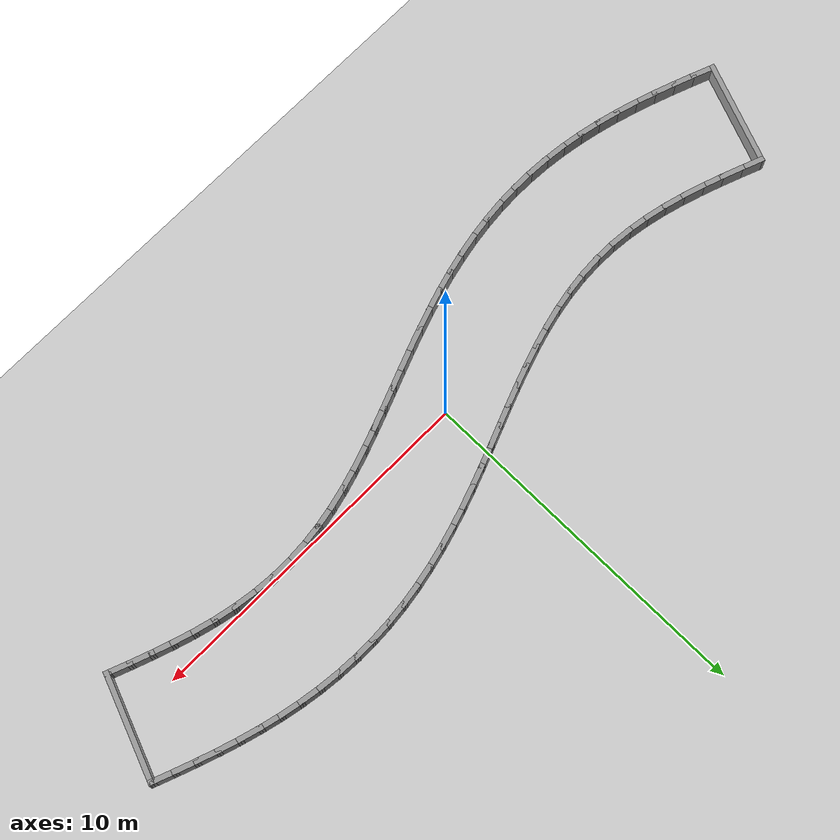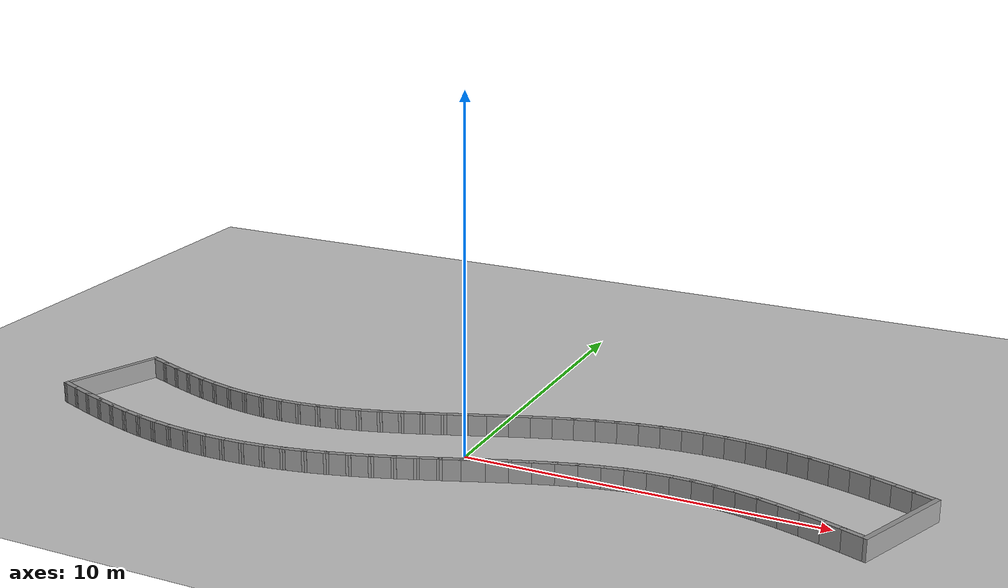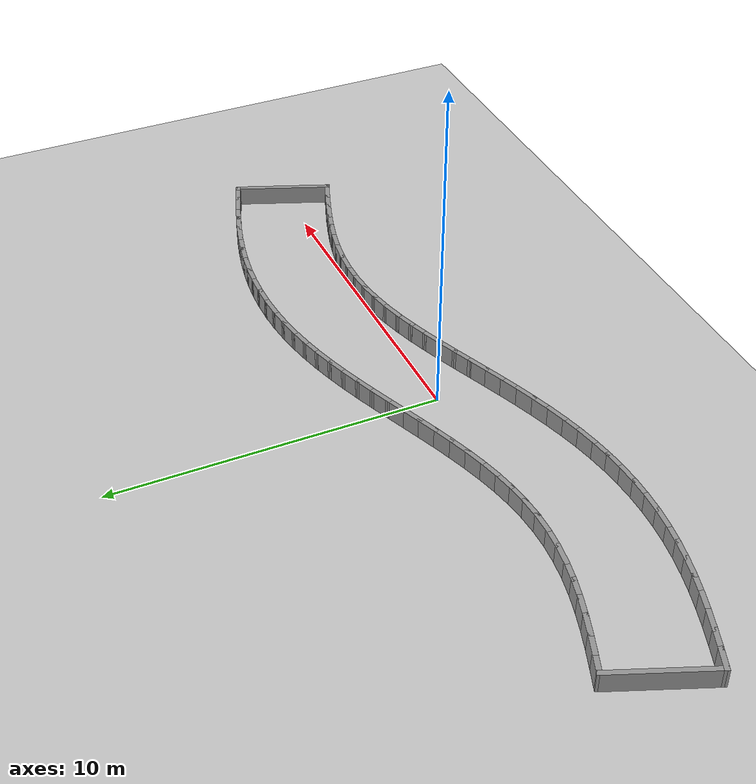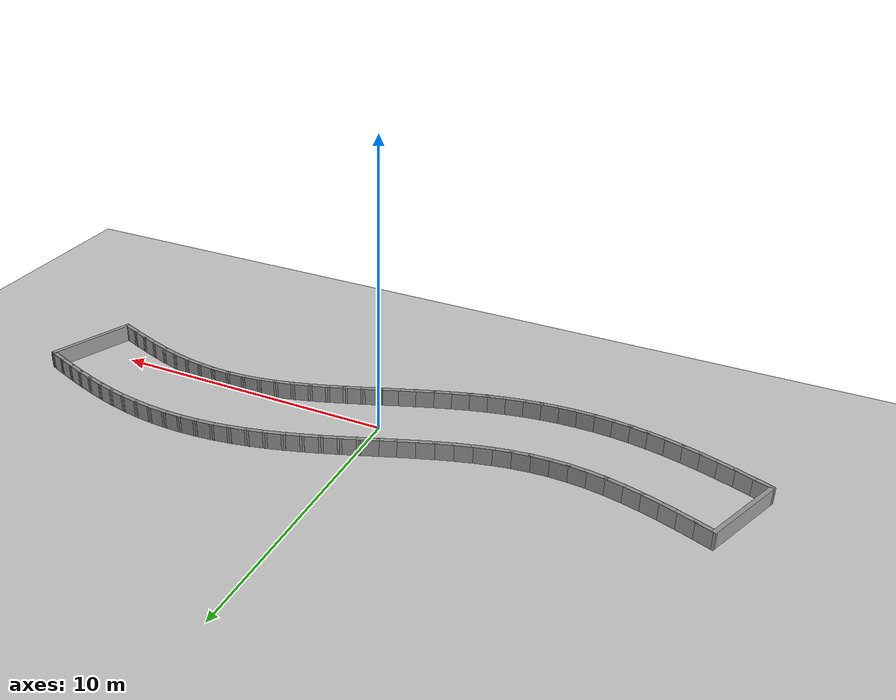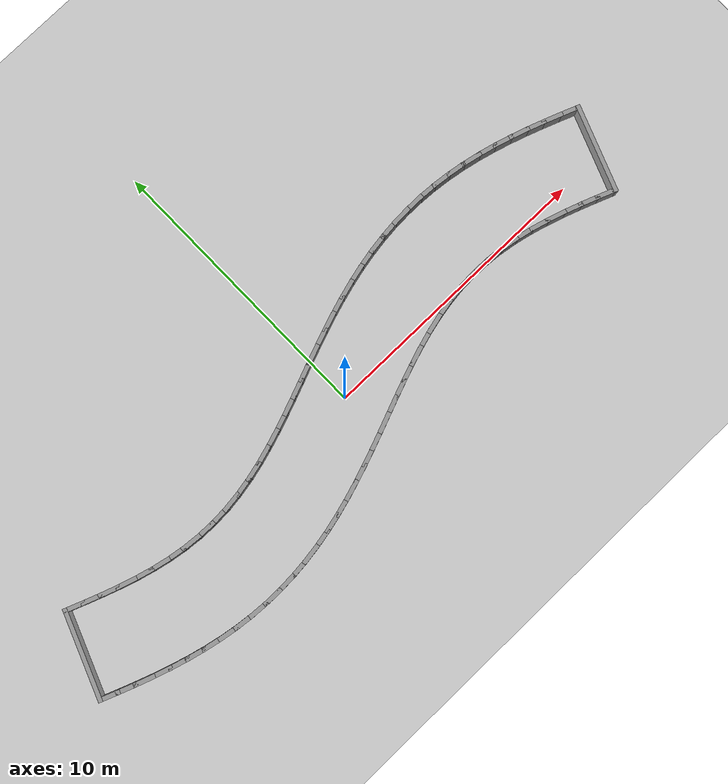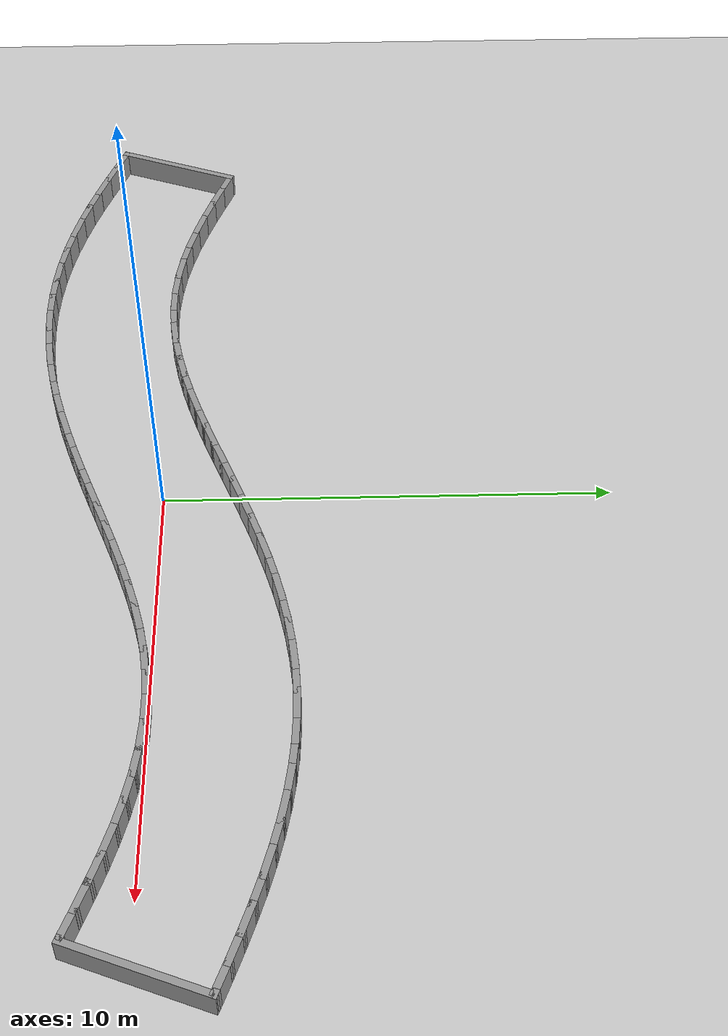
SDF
<?xml version="1.0" ?>
<sdf version='1.7'>
  <world name='default'>
    <plugin name='gazebo_ros_state' filename='libgazebo_ros_state.so'>
      <ros>
        <namespace>/</namespace>
      </ros>
      <update_rate>1000.0</update_rate>
    </plugin>

    <light name='sun' type='directional'>
      <cast_shadows>1</cast_shadows>
      <pose>0 0 10 0 -0 0</pose>
      <diffuse>0.8 0.8 0.8 1</diffuse>
      <specular>0.2 0.2 0.2 1</specular>
      <attenuation>
        <range>1000</range>
        <constant>0.9</constant>
        <linear>0.01</linear>
        <quadratic>0.001</quadratic>
      </attenuation>
      <direction>-0.5 0.1 -0.9</direction>
      <spot>
        <inner_angle>0</inner_angle>
        <outer_angle>0</outer_angle>
        <falloff>0</falloff>
      </spot>
    </light>
    <model name='ground_plane'>
      <static>1</static>
      <link name='link'>
        <collision name='collision'>
          <geometry>
            <plane>
              <normal>0 0 1</normal>
              <size>100 100</size>
            </plane>
          </geometry>
          <surface>
            <friction>
              <ode>
                <mu>100</mu>
                <mu2>50</mu2>
              </ode>
              <torsional>
                <ode/>
              </torsional>
            </friction>
            <contact>
              <ode/>
            </contact>
            <bounce/>
          </surface>
          <max_contacts>10</max_contacts>
        </collision>
        <visual name='visual'>
          <cast_shadows>0</cast_shadows>
          <geometry>
            <plane>
              <normal>0 0 1</normal>
              <size>100 100</size>
            </plane>
          </geometry>
          <material>
            <script>
              <uri>file://media/materials/scripts/gazebo.material</uri>
              <name>Gazebo/Grey</name>
            </script>
          </material>
        </visual>
        <self_collide>0</self_collide>
        <enable_wind>0</enable_wind>
        <kinematic>0</kinematic>
      </link>
    </model>
    <gravity>0 0 -9.8</gravity>
    <magnetic_field>6e-06 2.3e-05 -4.2e-05</magnetic_field>
    <atmosphere type='adiabatic'/>
    <physics type='ode'>
      <max_step_size>0.001</max_step_size>
      <real_time_factor>1</real_time_factor>
      <real_time_update_rate>1000</real_time_update_rate>
    </physics>
    <scene>
      <ambient>0.4 0.4 0.4 1</ambient>
      <background>0.7 0.7 0.7 1</background>
      <shadows>1</shadows>
    </scene>
    <audio>
      <device>default</device>
    </audio>
    <wind/>
    <spherical_coordinates>
      <surface_model>EARTH_WGS84</surface_model>
      <latitude_deg>0</latitude_deg>
      <longitude_deg>0</longitude_deg>
      <elevation>0</elevation>
      <heading_deg>0</heading_deg>
    </spherical_coordinates>
  <model name='gentle_chicane'>
    <pose>0 0 0 0 -0 0</pose>
    <link name='Wall_0'>
      <collision name='Wall_0_Collision'>
        <geometry><box><size>0.7500 0.1500 0.6000</size></box></geometry>
        <pose>0 0 0.3000 0 -0 0</pose>
      </collision>
      <visual name='Wall_0_Visual'>
        <pose>0 0 0.3000 0 -0 0</pose>
        <geometry><box><size>0.7500 0.1500 0.6000</size></box></geometry>
        <material>
          <script>
            <uri>file://media/materials/scripts/gazebo.material</uri>
            <name>Gazebo/Grey</name>
          </script>
          <ambient>1 1 1 1</ambient>
        </material>
      </visual>
      <pose>-10.7748 1.1325 0 0 -0 -0.36840</pose>
    </link>
    <link name='Wall_1'>
      <collision name='Wall_1_Collision'>
        <geometry><box><size>0.7500 0.1500 0.6000</size></box></geometry>
        <pose>0 0 0.3000 0 -0 0</pose>
      </collision>
      <visual name='Wall_1_Visual'>
        <pose>0 0 0.3000 0 -0 0</pose>
        <geometry><box><size>0.7500 0.1500 0.6000</size></box></geometry>
        <material>
          <script>
            <uri>file://media/materials/scripts/gazebo.material</uri>
            <name>Gazebo/Grey</name>
          </script>
          <ambient>1 1 1 1</ambient>
        </material>
      </visual>
      <pose>-10.2137 0.9201 0 0 -0 -0.35527</pose>
    </link>
    <link name='Wall_2'>
      <collision name='Wall_2_Collision'>
        <geometry><box><size>0.7500 0.1500 0.6000</size></box></geometry>
        <pose>0 0 0.3000 0 -0 0</pose>
      </collision>
      <visual name='Wall_2_Visual'>
        <pose>0 0 0.3000 0 -0 0</pose>
        <geometry><box><size>0.7500 0.1500 0.6000</size></box></geometry>
        <material>
          <script>
            <uri>file://media/materials/scripts/gazebo.material</uri>
            <name>Gazebo/Grey</name>
          </script>
          <ambient>1 1 1 1</ambient>
        </material>
      </visual>
      <pose>-9.6490 0.7175 0 0 -0 -0.33373</pose>
    </link>
    <link name='Wall_3'>
      <collision name='Wall_3_Collision'>
        <geometry><box><size>0.7500 0.1500 0.6000</size></box></geometry>
        <pose>0 0 0.3000 0 -0 0</pose>
      </collision>
      <visual name='Wall_3_Visual'>
        <pose>0 0 0.3000 0 -0 0</pose>
        <geometry><box><size>0.7500 0.1500 0.6000</size></box></geometry>
        <material>
          <script>
            <uri>file://media/materials/scripts/gazebo.material</uri>
            <name>Gazebo/Grey</name>
          </script>
          <ambient>1 1 1 1</ambient>
        </material>
      </visual>
      <pose>-9.0792 0.5297 0 0 -0 -0.30323</pose>
    </link>
    <link name='Wall_4'>
      <collision name='Wall_4_Collision'>
        <geometry><box><size>0.7499 0.1500 0.6000</size></box></geometry>
        <pose>0 0 0.3000 0 -0 0</pose>
      </collision>
      <visual name='Wall_4_Visual'>
        <pose>0 0 0.3000 0 -0 0</pose>
        <geometry><box><size>0.7499 0.1500 0.6000</size></box></geometry>
        <material>
          <script>
            <uri>file://media/materials/scripts/gazebo.material</uri>
            <name>Gazebo/Grey</name>
          </script>
          <ambient>1 1 1 1</ambient>
        </material>
      </visual>
      <pose>-8.5033 0.3620 0 0 -0 -0.26325</pose>
    </link>
    <link name='Wall_5'>
      <collision name='Wall_5_Collision'>
        <geometry><box><size>0.7499 0.1500 0.6000</size></box></geometry>
        <pose>0 0 0.3000 0 -0 0</pose>
      </collision>
      <visual name='Wall_5_Visual'>
        <pose>0 0 0.3000 0 -0 0</pose>
        <geometry><box><size>0.7499 0.1500 0.6000</size></box></geometry>
        <material>
          <script>
            <uri>file://media/materials/scripts/gazebo.material</uri>
            <name>Gazebo/Grey</name>
          </script>
          <ambient>1 1 1 1</ambient>
        </material>
      </visual>
      <pose>-7.9205 0.2204 0 0 -0 -0.21361</pose>
    </link>
    <link name='Wall_6'>
      <collision name='Wall_6_Collision'>
        <geometry><box><size>0.7499 0.1500 0.6000</size></box></geometry>
        <pose>0 0 0.3000 0 -0 0</pose>
      </collision>
      <visual name='Wall_6_Visual'>
        <pose>0 0 0.3000 0 -0 0</pose>
        <geometry><box><size>0.7499 0.1500 0.6000</size></box></geometry>
        <material>
          <script>
            <uri>file://media/materials/scripts/gazebo.material</uri>
            <name>Gazebo/Grey</name>
          </script>
          <ambient>1 1 1 1</ambient>
        </material>
      </visual>
      <pose>-7.3310 0.1106 0 0 -0 -0.15466</pose>
    </link>
    <link name='Wall_7'>
      <collision name='Wall_7_Collision'>
        <geometry><box><size>0.7499 0.1500 0.6000</size></box></geometry>
        <pose>0 0 0.3000 0 -0 0</pose>
      </collision>
      <visual name='Wall_7_Visual'>
        <pose>0 0 0.3000 0 -0 0</pose>
        <geometry><box><size>0.7499 0.1500 0.6000</size></box></geometry>
        <material>
          <script>
            <uri>file://media/materials/scripts/gazebo.material</uri>
            <name>Gazebo/Grey</name>
          </script>
          <ambient>1 1 1 1</ambient>
        </material>
      </visual>
      <pose>-6.7358 0.0380 0 0 -0 -0.08809</pose>
    </link>
    <link name='Wall_8'>
      <collision name='Wall_8_Collision'>
        <geometry><box><size>0.7499 0.1500 0.6000</size></box></geometry>
        <pose>0 0 0.3000 0 -0 0</pose>
      </collision>
      <visual name='Wall_8_Visual'>
        <pose>0 0 0.3000 0 -0 0</pose>
        <geometry><box><size>0.7499 0.1500 0.6000</size></box></geometry>
        <material>
          <script>
            <uri>file://media/materials/scripts/gazebo.material</uri>
            <name>Gazebo/Grey</name>
          </script>
          <ambient>1 1 1 1</ambient>
        </material>
      </visual>
      <pose>-6.1372 0.0066 0 0 -0 -0.01665</pose>
    </link>
    <link name='Wall_9'>
      <collision name='Wall_9_Collision'>
        <geometry><box><size>0.7499 0.1500 0.6000</size></box></geometry>
        <pose>0 0 0.3000 0 -0 0</pose>
      </collision>
      <visual name='Wall_9_Visual'>
        <pose>0 0 0.3000 0 -0 0</pose>
        <geometry><box><size>0.7499 0.1500 0.6000</size></box></geometry>
        <material>
          <script>
            <uri>file://media/materials/scripts/gazebo.material</uri>
            <name>Gazebo/Grey</name>
          </script>
          <ambient>1 1 1 1</ambient>
        </material>
      </visual>
      <pose>-5.5378 0.0183 0 0 -0 0.05576</pose>
    </link>
    <link name='Wall_10'>
      <collision name='Wall_10_Collision'>
        <geometry><box><size>0.7499 0.1500 0.6000</size></box></geometry>
        <pose>0 0 0.3000 0 -0 0</pose>
      </collision>
      <visual name='Wall_10_Visual'>
        <pose>0 0 0.3000 0 -0 0</pose>
        <geometry><box><size>0.7499 0.1500 0.6000</size></box></geometry>
        <material>
          <script>
            <uri>file://media/materials/scripts/gazebo.material</uri>
            <name>Gazebo/Grey</name>
          </script>
          <ambient>1 1 1 1</ambient>
        </material>
      </visual>
      <pose>-4.9407 0.0725 0 0 -0 0.12505</pose>
    </link>
    <link name='Wall_11'>
      <collision name='Wall_11_Collision'>
        <geometry><box><size>0.7499 0.1500 0.6000</size></box></geometry>
        <pose>0 0 0.3000 0 -0 0</pose>
      </collision>
      <visual name='Wall_11_Visual'>
        <pose>0 0 0.3000 0 -0 0</pose>
        <geometry><box><size>0.7499 0.1500 0.6000</size></box></geometry>
        <material>
          <script>
            <uri>file://media/materials/scripts/gazebo.material</uri>
            <name>Gazebo/Grey</name>
          </script>
          <ambient>1 1 1 1</ambient>
        </material>
      </visual>
      <pose>-4.3484 0.1659 0 0 -0 0.18774</pose>
    </link>
    <link name='Wall_12'>
      <collision name='Wall_12_Collision'>
        <geometry><box><size>0.7499 0.1500 0.6000</size></box></geometry>
        <pose>0 0 0.3000 0 -0 0</pose>
      </collision>
      <visual name='Wall_12_Visual'>
        <pose>0 0 0.3000 0 -0 0</pose>
        <geometry><box><size>0.7499 0.1500 0.6000</size></box></geometry>
        <material>
          <script>
            <uri>file://media/materials/scripts/gazebo.material</uri>
            <name>Gazebo/Grey</name>
          </script>
          <ambient>1 1 1 1</ambient>
        </material>
      </visual>
      <pose>-3.7625 0.2937 0 0 -0 0.24173</pose>
    </link>
    <link name='Wall_13'>
      <collision name='Wall_13_Collision'>
        <geometry><box><size>0.7500 0.1500 0.6000</size></box></geometry>
        <pose>0 0 0.3000 0 -0 0</pose>
      </collision>
      <visual name='Wall_13_Visual'>
        <pose>0 0 0.3000 0 -0 0</pose>
        <geometry><box><size>0.7500 0.1500 0.6000</size></box></geometry>
        <material>
          <script>
            <uri>file://media/materials/scripts/gazebo.material</uri>
            <name>Gazebo/Grey</name>
          </script>
          <ambient>1 1 1 1</ambient>
        </material>
      </visual>
      <pose>-3.1835 0.4501 0 0 -0 0.28612</pose>
    </link>
    <link name='Wall_14'>
      <collision name='Wall_14_Collision'>
        <geometry><box><size>0.7500 0.1500 0.6000</size></box></geometry>
        <pose>0 0 0.3000 0 -0 0</pose>
      </collision>
      <visual name='Wall_14_Visual'>
        <pose>0 0 0.3000 0 -0 0</pose>
        <geometry><box><size>0.7500 0.1500 0.6000</size></box></geometry>
        <material>
          <script>
            <uri>file://media/materials/scripts/gazebo.material</uri>
            <name>Gazebo/Grey</name>
          </script>
          <ambient>1 1 1 1</ambient>
        </material>
      </visual>
      <pose>-2.6110 0.6294 0 0 -0 0.32094</pose>
    </link>
    <link name='Wall_15'>
      <collision name='Wall_15_Collision'>
        <geometry><box><size>0.7500 0.1500 0.6000</size></box></geometry>
        <pose>0 0 0.3000 0 -0 0</pose>
      </collision>
      <visual name='Wall_15_Visual'>
        <pose>0 0 0.3000 0 -0 0</pose>
        <geometry><box><size>0.7500 0.1500 0.6000</size></box></geometry>
        <material>
          <script>
            <uri>file://media/materials/scripts/gazebo.material</uri>
            <name>Gazebo/Grey</name>
          </script>
          <ambient>1 1 1 1</ambient>
        </material>
      </visual>
      <pose>-2.0442 0.8259 0 0 -0 0.34648</pose>
    </link>
    <link name='Wall_16'>
      <collision name='Wall_16_Collision'>
        <geometry><box><size>0.7500 0.1500 0.6000</size></box></geometry>
        <pose>0 0 0.3000 0 -0 0</pose>
      </collision>
      <visual name='Wall_16_Visual'>
        <pose>0 0 0.3000 0 -0 0</pose>
        <geometry><box><size>0.7500 0.1500 0.6000</size></box></geometry>
        <material>
          <script>
            <uri>file://media/materials/scripts/gazebo.material</uri>
            <name>Gazebo/Grey</name>
          </script>
          <ambient>1 1 1 1</ambient>
        </material>
      </visual>
      <pose>-1.4816 1.0344 0 0 -0 0.36340</pose>
    </link>
    <link name='Wall_17'>
      <collision name='Wall_17_Collision'>
        <geometry><box><size>0.7500 0.1500 0.6000</size></box></geometry>
        <pose>0 0 0.3000 0 -0 0</pose>
      </collision>
      <visual name='Wall_17_Visual'>
        <pose>0 0 0.3000 0 -0 0</pose>
        <geometry><box><size>0.7500 0.1500 0.6000</size></box></geometry>
        <material>
          <script>
            <uri>file://media/materials/scripts/gazebo.material</uri>
            <name>Gazebo/Grey</name>
          </script>
          <ambient>1 1 1 1</ambient>
        </material>
      </visual>
      <pose>-0.9217 1.2502 0 0 -0 0.37223</pose>
    </link>
    <link name='Wall_18'>
      <collision name='Wall_18_Collision'>
        <geometry><box><size>0.7500 0.1500 0.6000</size></box></geometry>
        <pose>0 0 0.3000 0 -0 0</pose>
      </collision>
      <visual name='Wall_18_Visual'>
        <pose>0 0 0.3000 0 -0 0</pose>
        <geometry><box><size>0.7500 0.1500 0.6000</size></box></geometry>
        <material>
          <script>
            <uri>file://media/materials/scripts/gazebo.material</uri>
            <name>Gazebo/Grey</name>
          </script>
          <ambient>1 1 1 1</ambient>
        </material>
      </visual>
      <pose>-0.3630 1.4688 0 0 -0 0.37350</pose>
    </link>
    <link name='Wall_19'>
      <collision name='Wall_19_Collision'>
        <geometry><box><size>0.7500 0.1500 0.6000</size></box></geometry>
        <pose>0 0 0.3000 0 -0 0</pose>
      </collision>
      <visual name='Wall_19_Visual'>
        <pose>0 0 0.3000 0 -0 0</pose>
        <geometry><box><size>0.7500 0.1500 0.6000</size></box></geometry>
        <material>
          <script>
            <uri>file://media/materials/scripts/gazebo.material</uri>
            <name>Gazebo/Grey</name>
          </script>
          <ambient>1 1 1 1</ambient>
        </material>
      </visual>
      <pose>0.1963 1.6860 0 0 -0 0.36761</pose>
    </link>
    <link name='Wall_20'>
      <collision name='Wall_20_Collision'>
        <geometry><box><size>0.7500 0.1500 0.6000</size></box></geometry>
        <pose>0 0 0.3000 0 -0 0</pose>
      </collision>
      <visual name='Wall_20_Visual'>
        <pose>0 0 0.3000 0 -0 0</pose>
        <geometry><box><size>0.7500 0.1500 0.6000</size></box></geometry>
        <material>
          <script>
            <uri>file://media/materials/scripts/gazebo.material</uri>
            <name>Gazebo/Grey</name>
          </script>
          <ambient>1 1 1 1</ambient>
        </material>
      </visual>
      <pose>0.7576 1.8981 0 0 -0 0.35490</pose>
    </link>
    <link name='Wall_21'>
      <collision name='Wall_21_Collision'>
        <geometry><box><size>0.7500 0.1500 0.6000</size></box></geometry>
        <pose>0 0 0.3000 0 -0 0</pose>
      </collision>
      <visual name='Wall_21_Visual'>
        <pose>0 0 0.3000 0 -0 0</pose>
        <geometry><box><size>0.7500 0.1500 0.6000</size></box></geometry>
        <material>
          <script>
            <uri>file://media/materials/scripts/gazebo.material</uri>
            <name>Gazebo/Grey</name>
          </script>
          <ambient>1 1 1 1</ambient>
        </material>
      </visual>
      <pose>1.3221 2.1011 0 0 -0 0.33563</pose>
    </link>
    <link name='Wall_22'>
      <collision name='Wall_22_Collision'>
        <geometry><box><size>0.7500 0.1500 0.6000</size></box></geometry>
        <pose>0 0 0.3000 0 -0 0</pose>
      </collision>
      <visual name='Wall_22_Visual'>
        <pose>0 0 0.3000 0 -0 0</pose>
        <geometry><box><size>0.7500 0.1500 0.6000</size></box></geometry>
        <material>
          <script>
            <uri>file://media/materials/scripts/gazebo.material</uri>
            <name>Gazebo/Grey</name>
          </script>
          <ambient>1 1 1 1</ambient>
        </material>
      </visual>
      <pose>1.8910 2.2915 0 0 -0 0.31016</pose>
    </link>
    <link name='Wall_23'>
      <collision name='Wall_23_Collision'>
        <geometry><box><size>0.7500 0.1500 0.6000</size></box></geometry>
        <pose>0 0 0.3000 0 -0 0</pose>
      </collision>
      <visual name='Wall_23_Visual'>
        <pose>0 0 0.3000 0 -0 0</pose>
        <geometry><box><size>0.7500 0.1500 0.6000</size></box></geometry>
        <material>
          <script>
            <uri>file://media/materials/scripts/gazebo.material</uri>
            <name>Gazebo/Grey</name>
          </script>
          <ambient>1 1 1 1</ambient>
        </material>
      </visual>
      <pose>2.4651 2.4656 0 0 -0 0.27875</pose>
    </link>
    <link name='Wall_24'>
      <collision name='Wall_24_Collision'>
        <geometry><box><size>0.7500 0.1500 0.6000</size></box></geometry>
        <pose>0 0 0.3000 0 -0 0</pose>
      </collision>
      <visual name='Wall_24_Visual'>
        <pose>0 0 0.3000 0 -0 0</pose>
        <geometry><box><size>0.7500 0.1500 0.6000</size></box></geometry>
        <material>
          <script>
            <uri>file://media/materials/scripts/gazebo.material</uri>
            <name>Gazebo/Grey</name>
          </script>
          <ambient>1 1 1 1</ambient>
        </material>
      </visual>
      <pose>3.0448 2.6200 0 0 -0 0.24179</pose>
    </link>
    <link name='Wall_25'>
      <collision name='Wall_25_Collision'>
        <geometry><box><size>0.7500 0.1500 0.6000</size></box></geometry>
        <pose>0 0 0.3000 0 -0 0</pose>
      </collision>
      <visual name='Wall_25_Visual'>
        <pose>0 0 0.3000 0 -0 0</pose>
        <geometry><box><size>0.7500 0.1500 0.6000</size></box></geometry>
        <material>
          <script>
            <uri>file://media/materials/scripts/gazebo.material</uri>
            <name>Gazebo/Grey</name>
          </script>
          <ambient>1 1 1 1</ambient>
        </material>
      </visual>
      <pose>3.6300 2.7514 0 0 -0 0.19988</pose>
    </link>
    <link name='Wall_26'>
      <collision name='Wall_26_Collision'>
        <geometry><box><size>0.7499 0.1500 0.6000</size></box></geometry>
        <pose>0 0 0.3000 0 -0 0</pose>
      </collision>
      <visual name='Wall_26_Visual'>
        <pose>0 0 0.3000 0 -0 0</pose>
        <geometry><box><size>0.7499 0.1500 0.6000</size></box></geometry>
        <material>
          <script>
            <uri>file://media/materials/scripts/gazebo.material</uri>
            <name>Gazebo/Grey</name>
          </script>
          <ambient>1 1 1 1</ambient>
        </material>
      </visual>
      <pose>4.2205 2.8569 0 0 -0 0.15367</pose>
    </link>
    <link name='Wall_27'>
      <collision name='Wall_27_Collision'>
        <geometry><box><size>0.7499 0.1500 0.6000</size></box></geometry>
        <pose>0 0 0.3000 0 -0 0</pose>
      </collision>
      <visual name='Wall_27_Visual'>
        <pose>0 0 0.3000 0 -0 0</pose>
        <geometry><box><size>0.7499 0.1500 0.6000</size></box></geometry>
        <material>
          <script>
            <uri>file://media/materials/scripts/gazebo.material</uri>
            <name>Gazebo/Grey</name>
          </script>
          <ambient>1 1 1 1</ambient>
        </material>
      </visual>
      <pose>4.8153 2.9339 0 0 -0 0.10404</pose>
    </link>
    <link name='Wall_28'>
      <collision name='Wall_28_Collision'>
        <geometry><box><size>0.7499 0.1500 0.6000</size></box></geometry>
        <pose>0 0 0.3000 0 -0 0</pose>
      </collision>
      <visual name='Wall_28_Visual'>
        <pose>0 0 0.3000 0 -0 0</pose>
        <geometry><box><size>0.7499 0.1500 0.6000</size></box></geometry>
        <material>
          <script>
            <uri>file://media/materials/scripts/gazebo.material</uri>
            <name>Gazebo/Grey</name>
          </script>
          <ambient>1 1 1 1</ambient>
        </material>
      </visual>
      <pose>5.4132 2.9807 0 0 -0 0.05212</pose>
    </link>
    <link name='Wall_29'>
      <collision name='Wall_29_Collision'>
        <geometry><box><size>0.7499 0.1500 0.6000</size></box></geometry>
        <pose>0 0 0.3000 0 -0 0</pose>
      </collision>
      <visual name='Wall_29_Visual'>
        <pose>0 0 0.3000 0 -0 0</pose>
        <geometry><box><size>0.7499 0.1500 0.6000</size></box></geometry>
        <material>
          <script>
            <uri>file://media/materials/scripts/gazebo.material</uri>
            <name>Gazebo/Grey</name>
          </script>
          <ambient>1 1 1 1</ambient>
        </material>
      </visual>
      <pose>6.0127 2.9960 0 0 -0 -0.00118</pose>
    </link>
    <link name='Wall_30'>
      <collision name='Wall_30_Collision'>
        <geometry><box><size>0.7499 0.1500 0.6000</size></box></geometry>
        <pose>0 0 0.3000 0 -0 0</pose>
      </collision>
      <visual name='Wall_30_Visual'>
        <pose>0 0 0.3000 0 -0 0</pose>
        <geometry><box><size>0.7499 0.1500 0.6000</size></box></geometry>
        <material>
          <script>
            <uri>file://media/materials/scripts/gazebo.material</uri>
            <name>Gazebo/Grey</name>
          </script>
          <ambient>1 1 1 1</ambient>
        </material>
      </visual>
      <pose>6.6122 2.9793 0 0 -0 -0.05427</pose>
    </link>
    <link name='Wall_31'>
      <collision name='Wall_31_Collision'>
        <geometry><box><size>0.7499 0.1500 0.6000</size></box></geometry>
        <pose>0 0 0.3000 0 -0 0</pose>
      </collision>
      <visual name='Wall_31_Visual'>
        <pose>0 0 0.3000 0 -0 0</pose>
        <geometry><box><size>0.7499 0.1500 0.6000</size></box></geometry>
        <material>
          <script>
            <uri>file://media/materials/scripts/gazebo.material</uri>
            <name>Gazebo/Grey</name>
          </script>
          <ambient>1 1 1 1</ambient>
        </material>
      </visual>
      <pose>7.2100 2.9313 0 0 -0 -0.10622</pose>
    </link>
    <link name='Wall_32'>
      <collision name='Wall_32_Collision'>
        <geometry><box><size>0.7499 0.1500 0.6000</size></box></geometry>
        <pose>0 0 0.3000 0 -0 0</pose>
      </collision>
      <visual name='Wall_32_Visual'>
        <pose>0 0 0.3000 0 -0 0</pose>
        <geometry><box><size>0.7499 0.1500 0.6000</size></box></geometry>
        <material>
          <script>
            <uri>file://media/materials/scripts/gazebo.material</uri>
            <name>Gazebo/Grey</name>
          </script>
          <ambient>1 1 1 1</ambient>
        </material>
      </visual>
      <pose>7.8046 2.8529 0 0 -0 -0.15571</pose>
    </link>
    <link name='Wall_33'>
      <collision name='Wall_33_Collision'>
        <geometry><box><size>0.7500 0.1500 0.6000</size></box></geometry>
        <pose>0 0 0.3000 0 -0 0</pose>
      </collision>
      <visual name='Wall_33_Visual'>
        <pose>0 0 0.3000 0 -0 0</pose>
        <geometry><box><size>0.7500 0.1500 0.6000</size></box></geometry>
        <material>
          <script>
            <uri>file://media/materials/scripts/gazebo.material</uri>
            <name>Gazebo/Grey</name>
          </script>
          <ambient>1 1 1 1</ambient>
        </material>
      </visual>
      <pose>8.3948 2.7463 0 0 -0 -0.20172</pose>
    </link>
    <link name='Wall_34'>
      <collision name='Wall_34_Collision'>
        <geometry><box><size>0.7500 0.1500 0.6000</size></box></geometry>
        <pose>0 0 0.3000 0 -0 0</pose>
      </collision>
      <visual name='Wall_34_Visual'>
        <pose>0 0 0.3000 0 -0 0</pose>
        <geometry><box><size>0.7500 0.1500 0.6000</size></box></geometry>
        <material>
          <script>
            <uri>file://media/materials/scripts/gazebo.material</uri>
            <name>Gazebo/Grey</name>
          </script>
          <ambient>1 1 1 1</ambient>
        </material>
      </visual>
      <pose>8.9799 2.6139 0 0 -0 -0.24349</pose>
    </link>
    <link name='Wall_35'>
      <collision name='Wall_35_Collision'>
        <geometry><box><size>0.7500 0.1500 0.6000</size></box></geometry>
        <pose>0 0 0.3000 0 -0 0</pose>
      </collision>
      <visual name='Wall_35_Visual'>
        <pose>0 0 0.3000 0 -0 0</pose>
        <geometry><box><size>0.7500 0.1500 0.6000</size></box></geometry>
        <material>
          <script>
            <uri>file://media/materials/scripts/gazebo.material</uri>
            <name>Gazebo/Grey</name>
          </script>
          <ambient>1 1 1 1</ambient>
        </material>
      </visual>
      <pose>9.5593 2.4586 0 0 -0 -0.28017</pose>
    </link>
    <link name='Wall_36'>
      <collision name='Wall_36_Collision'>
        <geometry><box><size>0.7500 0.1500 0.6000</size></box></geometry>
        <pose>0 0 0.3000 0 -0 0</pose>
      </collision>
      <visual name='Wall_36_Visual'>
        <pose>0 0 0.3000 0 -0 0</pose>
        <geometry><box><size>0.7500 0.1500 0.6000</size></box></geometry>
        <material>
          <script>
            <uri>file://media/materials/scripts/gazebo.material</uri>
            <name>Gazebo/Grey</name>
          </script>
          <ambient>1 1 1 1</ambient>
        </material>
      </visual>
      <pose>10.1331 2.2838 0 0 -0 -0.31136</pose>
    </link>
    <link name='Wall_37'>
      <collision name='Wall_37_Collision'>
        <geometry><box><size>0.7500 0.1500 0.6000</size></box></geometry>
        <pose>0 0 0.3000 0 -0 0</pose>
      </collision>
      <visual name='Wall_37_Visual'>
        <pose>0 0 0.3000 0 -0 0</pose>
        <geometry><box><size>0.7500 0.1500 0.6000</size></box></geometry>
        <material>
          <script>
            <uri>file://media/materials/scripts/gazebo.material</uri>
            <name>Gazebo/Grey</name>
          </script>
          <ambient>1 1 1 1</ambient>
        </material>
      </visual>
      <pose>10.7019 2.0928 0 0 -0 -0.33660</pose>
    </link>
    <link name='Wall_38'>
      <collision name='Wall_38_Collision'>
        <geometry><box><size>0.7500 0.1500 0.6000</size></box></geometry>
        <pose>0 0 0.3000 0 -0 0</pose>
      </collision>
      <visual name='Wall_38_Visual'>
        <pose>0 0 0.3000 0 -0 0</pose>
        <geometry><box><size>0.7500 0.1500 0.6000</size></box></geometry>
        <material>
          <script>
            <uri>file://media/materials/scripts/gazebo.material</uri>
            <name>Gazebo/Grey</name>
          </script>
          <ambient>1 1 1 1</ambient>
        </material>
      </visual>
      <pose>11.2662 1.8893 0 0 -0 -0.35556</pose>
    </link>
    <link name='Wall_39'>
      <collision name='Wall_39_Collision'>
        <geometry><box><size>0.7500 0.1500 0.6000</size></box></geometry>
        <pose>0 0 0.3000 0 -0 0</pose>
      </collision>
      <visual name='Wall_39_Visual'>
        <pose>0 0 0.3000 0 -0 0</pose>
        <geometry><box><size>0.7500 0.1500 0.6000</size></box></geometry>
        <material>
          <script>
            <uri>file://media/materials/scripts/gazebo.material</uri>
            <name>Gazebo/Grey</name>
          </script>
          <ambient>1 1 1 1</ambient>
        </material>
      </visual>
      <pose>11.8274 1.6769 0 0 -0 -0.36799</pose>
    </link>
    <link name='Wall_40'>
      <collision name='Wall_40_Collision'>
        <geometry><box><size>0.1908 0.1500 0.6000</size></box></geometry>
        <pose>0 0 0.3000 0 -0 0</pose>
      </collision>
      <visual name='Wall_40_Visual'>
        <pose>0 0 0.3000 0 -0 0</pose>
        <geometry><box><size>0.1908 0.1500 0.6000</size></box></geometry>
        <material>
          <script>
            <uri>file://media/materials/scripts/gazebo.material</uri>
            <name>Gazebo/Grey</name>
          </script>
          <ambient>1 1 1 1</ambient>
        </material>
      </visual>
      <pose>12.1263 1.5616 0 0 -0 -0.37209</pose>
    </link>
    <link name='Wall_41'>
      <collision name='Wall_41_Collision'>
        <geometry><box><size>0.7500 0.1500 0.6000</size></box></geometry>
        <pose>0 0 0.3000 0 -0 0</pose>
      </collision>
      <visual name='Wall_41_Visual'>
        <pose>0 0 0.3000 0 -0 0</pose>
        <geometry><box><size>0.7500 0.1500 0.6000</size></box></geometry>
        <material>
          <script>
            <uri>file://media/materials/scripts/gazebo.material</uri>
            <name>Gazebo/Grey</name>
          </script>
          <ambient>1 1 1 1</ambient>
        </material>
      </visual>
      <pose>-11.8655 -1.6622 0 0 -0 -0.36860</pose>
    </link>
    <link name='Wall_42'>
      <collision name='Wall_42_Collision'>
        <geometry><box><size>0.7500 0.1500 0.6000</size></box></geometry>
        <pose>0 0 0.3000 0 -0 0</pose>
      </collision>
      <visual name='Wall_42_Visual'>
        <pose>0 0 0.3000 0 -0 0</pose>
        <geometry><box><size>0.7500 0.1500 0.6000</size></box></geometry>
        <material>
          <script>
            <uri>file://media/materials/scripts/gazebo.material</uri>
            <name>Gazebo/Grey</name>
          </script>
          <ambient>1 1 1 1</ambient>
        </material>
      </visual>
      <pose>-11.3045 -1.8751 0 0 -0 -0.35661</pose>
    </link>
    <link name='Wall_43'>
      <collision name='Wall_43_Collision'>
        <geometry><box><size>0.7500 0.1500 0.6000</size></box></geometry>
        <pose>0 0 0.3000 0 -0 0</pose>
      </collision>
      <visual name='Wall_43_Visual'>
        <pose>0 0 0.3000 0 -0 0</pose>
        <geometry><box><size>0.7500 0.1500 0.6000</size></box></geometry>
        <material>
          <script>
            <uri>file://media/materials/scripts/gazebo.material</uri>
            <name>Gazebo/Grey</name>
          </script>
          <ambient>1 1 1 1</ambient>
        </material>
      </visual>
      <pose>-10.7404 -2.0793 0 0 -0 -0.33808</pose>
    </link>
    <link name='Wall_44'>
      <collision name='Wall_44_Collision'>
        <geometry><box><size>0.7500 0.1500 0.6000</size></box></geometry>
        <pose>0 0 0.3000 0 -0 0</pose>
      </collision>
      <visual name='Wall_44_Visual'>
        <pose>0 0 0.3000 0 -0 0</pose>
        <geometry><box><size>0.7500 0.1500 0.6000</size></box></geometry>
        <material>
          <script>
            <uri>file://media/materials/scripts/gazebo.material</uri>
            <name>Gazebo/Grey</name>
          </script>
          <ambient>1 1 1 1</ambient>
        </material>
      </visual>
      <pose>-10.1720 -2.2712 0 0 -0 -0.31329</pose>
    </link>
    <link name='Wall_45'>
      <collision name='Wall_45_Collision'>
        <geometry><box><size>0.7500 0.1500 0.6000</size></box></geometry>
        <pose>0 0 0.3000 0 -0 0</pose>
      </collision>
      <visual name='Wall_45_Visual'>
        <pose>0 0 0.3000 0 -0 0</pose>
        <geometry><box><size>0.7500 0.1500 0.6000</size></box></geometry>
        <material>
          <script>
            <uri>file://media/materials/scripts/gazebo.material</uri>
            <name>Gazebo/Grey</name>
          </script>
          <ambient>1 1 1 1</ambient>
        </material>
      </visual>
      <pose>-9.5985 -2.4473 0 0 -0 -0.28247</pose>
    </link>
    <link name='Wall_46'>
      <collision name='Wall_46_Collision'>
        <geometry><box><size>0.7500 0.1500 0.6000</size></box></geometry>
        <pose>0 0 0.3000 0 -0 0</pose>
      </collision>
      <visual name='Wall_46_Visual'>
        <pose>0 0 0.3000 0 -0 0</pose>
        <geometry><box><size>0.7500 0.1500 0.6000</size></box></geometry>
        <material>
          <script>
            <uri>file://media/materials/scripts/gazebo.material</uri>
            <name>Gazebo/Grey</name>
          </script>
          <ambient>1 1 1 1</ambient>
        </material>
      </visual>
      <pose>-9.0195 -2.6040 0 0 -0 -0.24615</pose>
    </link>
    <link name='Wall_47'>
      <collision name='Wall_47_Collision'>
        <geometry><box><size>0.7500 0.1500 0.6000</size></box></geometry>
        <pose>0 0 0.3000 0 -0 0</pose>
      </collision>
      <visual name='Wall_47_Visual'>
        <pose>0 0 0.3000 0 -0 0</pose>
        <geometry><box><size>0.7500 0.1500 0.6000</size></box></geometry>
        <material>
          <script>
            <uri>file://media/materials/scripts/gazebo.material</uri>
            <name>Gazebo/Grey</name>
          </script>
          <ambient>1 1 1 1</ambient>
        </material>
      </visual>
      <pose>-8.4348 -2.7381 0 0 -0 -0.20471</pose>
    </link>
    <link name='Wall_48'>
      <collision name='Wall_48_Collision'>
        <geometry><box><size>0.7499 0.1500 0.6000</size></box></geometry>
        <pose>0 0 0.3000 0 -0 0</pose>
      </collision>
      <visual name='Wall_48_Visual'>
        <pose>0 0 0.3000 0 -0 0</pose>
        <geometry><box><size>0.7499 0.1500 0.6000</size></box></geometry>
        <material>
          <script>
            <uri>file://media/materials/scripts/gazebo.material</uri>
            <name>Gazebo/Grey</name>
          </script>
          <ambient>1 1 1 1</ambient>
        </material>
      </visual>
      <pose>-7.8449 -2.8466 0 0 -0 -0.15899</pose>
    </link>
    <link name='Wall_49'>
      <collision name='Wall_49_Collision'>
        <geometry><box><size>0.7499 0.1500 0.6000</size></box></geometry>
        <pose>0 0 0.3000 0 -0 0</pose>
      </collision>
      <visual name='Wall_49_Visual'>
        <pose>0 0 0.3000 0 -0 0</pose>
        <geometry><box><size>0.7499 0.1500 0.6000</size></box></geometry>
        <material>
          <script>
            <uri>file://media/materials/scripts/gazebo.material</uri>
            <name>Gazebo/Grey</name>
          </script>
          <ambient>1 1 1 1</ambient>
        </material>
      </visual>
      <pose>-7.2506 -2.9269 0 0 -0 -0.10962</pose>
    </link>
    <link name='Wall_50'>
      <collision name='Wall_50_Collision'>
        <geometry><box><size>0.7499 0.1500 0.6000</size></box></geometry>
        <pose>0 0 0.3000 0 -0 0</pose>
      </collision>
      <visual name='Wall_50_Visual'>
        <pose>0 0 0.3000 0 -0 0</pose>
        <geometry><box><size>0.7499 0.1500 0.6000</size></box></geometry>
        <material>
          <script>
            <uri>file://media/materials/scripts/gazebo.material</uri>
            <name>Gazebo/Grey</name>
          </script>
          <ambient>1 1 1 1</ambient>
        </material>
      </visual>
      <pose>-6.6529 -2.9771 0 0 -0 -0.05792</pose>
    </link>
    <link name='Wall_51'>
      <collision name='Wall_51_Collision'>
        <geometry><box><size>0.7499 0.1500 0.6000</size></box></geometry>
        <pose>0 0 0.3000 0 -0 0</pose>
      </collision>
      <visual name='Wall_51_Visual'>
        <pose>0 0 0.3000 0 -0 0</pose>
        <geometry><box><size>0.7499 0.1500 0.6000</size></box></geometry>
        <material>
          <script>
            <uri>file://media/materials/scripts/gazebo.material</uri>
            <name>Gazebo/Grey</name>
          </script>
          <ambient>1 1 1 1</ambient>
        </material>
      </visual>
      <pose>-6.0535 -2.9958 0 0 -0 -0.00474</pose>
    </link>
    <link name='Wall_52'>
      <collision name='Wall_52_Collision'>
        <geometry><box><size>0.7499 0.1500 0.6000</size></box></geometry>
        <pose>0 0 0.3000 0 -0 0</pose>
      </collision>
      <visual name='Wall_52_Visual'>
        <pose>0 0 0.3000 0 -0 0</pose>
        <geometry><box><size>0.7499 0.1500 0.6000</size></box></geometry>
        <material>
          <script>
            <uri>file://media/materials/scripts/gazebo.material</uri>
            <name>Gazebo/Grey</name>
          </script>
          <ambient>1 1 1 1</ambient>
        </material>
      </visual>
      <pose>-5.4539 -2.9827 0 0 -0 0.04848</pose>
    </link>
    <link name='Wall_53'>
      <collision name='Wall_53_Collision'>
        <geometry><box><size>0.7499 0.1500 0.6000</size></box></geometry>
        <pose>0 0 0.3000 0 -0 0</pose>
      </collision>
      <visual name='Wall_53_Visual'>
        <pose>0 0 0.3000 0 -0 0</pose>
        <geometry><box><size>0.7499 0.1500 0.6000</size></box></geometry>
        <material>
          <script>
            <uri>file://media/materials/scripts/gazebo.material</uri>
            <name>Gazebo/Grey</name>
          </script>
          <ambient>1 1 1 1</ambient>
        </material>
      </visual>
      <pose>-4.8559 -2.9381 0 0 -0 0.10054</pose>
    </link>
    <link name='Wall_54'>
      <collision name='Wall_54_Collision'>
        <geometry><box><size>0.7499 0.1500 0.6000</size></box></geometry>
        <pose>0 0 0.3000 0 -0 0</pose>
      </collision>
      <visual name='Wall_54_Visual'>
        <pose>0 0 0.3000 0 -0 0</pose>
        <geometry><box><size>0.7499 0.1500 0.6000</size></box></geometry>
        <material>
          <script>
            <uri>file://media/materials/scripts/gazebo.material</uri>
            <name>Gazebo/Grey</name>
          </script>
          <ambient>1 1 1 1</ambient>
        </material>
      </visual>
      <pose>-4.2608 -2.8630 0 0 -0 0.15043</pose>
    </link>
    <link name='Wall_55'>
      <collision name='Wall_55_Collision'>
        <geometry><box><size>0.7500 0.1500 0.6000</size></box></geometry>
        <pose>0 0 0.3000 0 -0 0</pose>
      </collision>
      <visual name='Wall_55_Visual'>
        <pose>0 0 0.3000 0 -0 0</pose>
        <geometry><box><size>0.7500 0.1500 0.6000</size></box></geometry>
        <material>
          <script>
            <uri>file://media/materials/scripts/gazebo.material</uri>
            <name>Gazebo/Grey</name>
          </script>
          <ambient>1 1 1 1</ambient>
        </material>
      </visual>
      <pose>-3.6701 -2.7594 0 0 -0 0.19681</pose>
    </link>
    <link name='Wall_56'>
      <collision name='Wall_56_Collision'>
        <geometry><box><size>0.7500 0.1500 0.6000</size></box></geometry>
        <pose>0 0 0.3000 0 -0 0</pose>
      </collision>
      <visual name='Wall_56_Visual'>
        <pose>0 0 0.3000 0 -0 0</pose>
        <geometry><box><size>0.7500 0.1500 0.6000</size></box></geometry>
        <material>
          <script>
            <uri>file://media/materials/scripts/gazebo.material</uri>
            <name>Gazebo/Grey</name>
          </script>
          <ambient>1 1 1 1</ambient>
        </material>
      </visual>
      <pose>-3.0844 -2.6297 0 0 -0 0.23914</pose>
    </link>
    <link name='Wall_57'>
      <collision name='Wall_57_Collision'>
        <geometry><box><size>0.7500 0.1500 0.6000</size></box></geometry>
        <pose>0 0 0.3000 0 -0 0</pose>
      </collision>
      <visual name='Wall_57_Visual'>
        <pose>0 0 0.3000 0 -0 0</pose>
        <geometry><box><size>0.7500 0.1500 0.6000</size></box></geometry>
        <material>
          <script>
            <uri>file://media/materials/scripts/gazebo.material</uri>
            <name>Gazebo/Grey</name>
          </script>
          <ambient>1 1 1 1</ambient>
        </material>
      </visual>
      <pose>-2.5044 -2.4768 0 0 -0 0.27636</pose>
    </link>
    <link name='Wall_58'>
      <collision name='Wall_58_Collision'>
        <geometry><box><size>0.7500 0.1500 0.6000</size></box></geometry>
        <pose>0 0 0.3000 0 -0 0</pose>
      </collision>
      <visual name='Wall_58_Visual'>
        <pose>0 0 0.3000 0 -0 0</pose>
        <geometry><box><size>0.7500 0.1500 0.6000</size></box></geometry>
        <material>
          <script>
            <uri>file://media/materials/scripts/gazebo.material</uri>
            <name>Gazebo/Grey</name>
          </script>
          <ambient>1 1 1 1</ambient>
        </material>
      </visual>
      <pose>-1.9299 -2.3039 0 0 -0 0.30823</pose>
    </link>
    <link name='Wall_59'>
      <collision name='Wall_59_Collision'>
        <geometry><box><size>0.7500 0.1500 0.6000</size></box></geometry>
        <pose>0 0 0.3000 0 -0 0</pose>
      </collision>
      <visual name='Wall_59_Visual'>
        <pose>0 0 0.3000 0 -0 0</pose>
        <geometry><box><size>0.7500 0.1500 0.6000</size></box></geometry>
        <material>
          <script>
            <uri>file://media/materials/scripts/gazebo.material</uri>
            <name>Gazebo/Grey</name>
          </script>
          <ambient>1 1 1 1</ambient>
        </material>
      </visual>
      <pose>-1.3607 -2.1145 0 0 -0 0.33411</pose>
    </link>
    <link name='Wall_60'>
      <collision name='Wall_60_Collision'>
        <geometry><box><size>0.7500 0.1500 0.6000</size></box></geometry>
        <pose>0 0 0.3000 0 -0 0</pose>
      </collision>
      <visual name='Wall_60_Visual'>
        <pose>0 0 0.3000 0 -0 0</pose>
        <geometry><box><size>0.7500 0.1500 0.6000</size></box></geometry>
        <material>
          <script>
            <uri>file://media/materials/scripts/gazebo.material</uri>
            <name>Gazebo/Grey</name>
          </script>
          <ambient>1 1 1 1</ambient>
        </material>
      </visual>
      <pose>-0.7959 -1.9122 0 0 -0 0.35378</pose>
    </link>
    <link name='Wall_61'>
      <collision name='Wall_61_Collision'>
        <geometry><box><size>0.7500 0.1500 0.6000</size></box></geometry>
        <pose>0 0 0.3000 0 -0 0</pose>
      </collision>
      <visual name='Wall_61_Visual'>
        <pose>0 0 0.3000 0 -0 0</pose>
        <geometry><box><size>0.7500 0.1500 0.6000</size></box></geometry>
        <material>
          <script>
            <uri>file://media/materials/scripts/gazebo.material</uri>
            <name>Gazebo/Grey</name>
          </script>
          <ambient>1 1 1 1</ambient>
        </material>
      </visual>
      <pose>-0.2344 -1.7007 0 0 -0 0.36695</pose>
    </link>
    <link name='Wall_62'>
      <collision name='Wall_62_Collision'>
        <geometry><box><size>0.7500 0.1500 0.6000</size></box></geometry>
        <pose>0 0 0.3000 0 -0 0</pose>
      </collision>
      <visual name='Wall_62_Visual'>
        <pose>0 0 0.3000 0 -0 0</pose>
        <geometry><box><size>0.7500 0.1500 0.6000</size></box></geometry>
        <material>
          <script>
            <uri>file://media/materials/scripts/gazebo.material</uri>
            <name>Gazebo/Grey</name>
          </script>
          <ambient>1 1 1 1</ambient>
        </material>
      </visual>
      <pose>0.3249 -1.4836 0 0 -0 0.37332</pose>
    </link>
    <link name='Wall_63'>
      <collision name='Wall_63_Collision'>
        <geometry><box><size>0.7500 0.1500 0.6000</size></box></geometry>
        <pose>0 0 0.3000 0 -0 0</pose>
      </collision>
      <visual name='Wall_63_Visual'>
        <pose>0 0 0.3000 0 -0 0</pose>
        <geometry><box><size>0.7500 0.1500 0.6000</size></box></geometry>
        <material>
          <script>
            <uri>file://media/materials/scripts/gazebo.material</uri>
            <name>Gazebo/Grey</name>
          </script>
          <ambient>1 1 1 1</ambient>
        </material>
      </visual>
      <pose>0.8837 -1.2650 0 0 -0 0.37255</pose>
    </link>
    <link name='Wall_64'>
      <collision name='Wall_64_Collision'>
        <geometry><box><size>0.7500 0.1500 0.6000</size></box></geometry>
        <pose>0 0 0.3000 0 -0 0</pose>
      </collision>
      <visual name='Wall_64_Visual'>
        <pose>0 0 0.3000 0 -0 0</pose>
        <geometry><box><size>0.7500 0.1500 0.6000</size></box></geometry>
        <material>
          <script>
            <uri>file://media/materials/scripts/gazebo.material</uri>
            <name>Gazebo/Grey</name>
          </script>
          <ambient>1 1 1 1</ambient>
        </material>
      </visual>
      <pose>1.4434 -1.0489 0 0 -0 0.36426</pose>
    </link>
    <link name='Wall_65'>
      <collision name='Wall_65_Collision'>
        <geometry><box><size>0.7500 0.1500 0.6000</size></box></geometry>
        <pose>0 0 0.3000 0 -0 0</pose>
      </collision>
      <visual name='Wall_65_Visual'>
        <pose>0 0 0.3000 0 -0 0</pose>
        <geometry><box><size>0.7500 0.1500 0.6000</size></box></geometry>
        <material>
          <script>
            <uri>file://media/materials/scripts/gazebo.material</uri>
            <name>Gazebo/Grey</name>
          </script>
          <ambient>1 1 1 1</ambient>
        </material>
      </visual>
      <pose>2.0058 -0.8398 0 0 -0 0.34790</pose>
    </link>
    <link name='Wall_66'>
      <collision name='Wall_66_Collision'>
        <geometry><box><size>0.7500 0.1500 0.6000</size></box></geometry>
        <pose>0 0 0.3000 0 -0 0</pose>
      </collision>
      <visual name='Wall_66_Visual'>
        <pose>0 0 0.3000 0 -0 0</pose>
        <geometry><box><size>0.7500 0.1500 0.6000</size></box></geometry>
        <material>
          <script>
            <uri>file://media/materials/scripts/gazebo.material</uri>
            <name>Gazebo/Grey</name>
          </script>
          <ambient>1 1 1 1</ambient>
        </material>
      </visual>
      <pose>2.5723 -0.6423 0 0 -0 0.32296</pose>
    </link>
    <link name='Wall_67'>
      <collision name='Wall_67_Collision'>
        <geometry><box><size>0.7500 0.1500 0.6000</size></box></geometry>
        <pose>0 0 0.3000 0 -0 0</pose>
      </collision>
      <visual name='Wall_67_Visual'>
        <pose>0 0 0.3000 0 -0 0</pose>
        <geometry><box><size>0.7500 0.1500 0.6000</size></box></geometry>
        <material>
          <script>
            <uri>file://media/materials/scripts/gazebo.material</uri>
            <name>Gazebo/Grey</name>
          </script>
          <ambient>1 1 1 1</ambient>
        </material>
      </visual>
      <pose>3.1443 -0.4617 0 0 -0 0.28879</pose>
    </link>
    <link name='Wall_68'>
      <collision name='Wall_68_Collision'>
        <geometry><box><size>0.7499 0.1500 0.6000</size></box></geometry>
        <pose>0 0 0.3000 0 -0 0</pose>
      </collision>
      <visual name='Wall_68_Visual'>
        <pose>0 0 0.3000 0 -0 0</pose>
        <geometry><box><size>0.7499 0.1500 0.6000</size></box></geometry>
        <material>
          <script>
            <uri>file://media/materials/scripts/gazebo.material</uri>
            <name>Gazebo/Grey</name>
          </script>
          <ambient>1 1 1 1</ambient>
        </material>
      </visual>
      <pose>3.7229 -0.3035 0 0 -0 0.24506</pose>
    </link>
    <link name='Wall_69'>
      <collision name='Wall_69_Collision'>
        <geometry><box><size>0.7499 0.1500 0.6000</size></box></geometry>
        <pose>0 0 0.3000 0 -0 0</pose>
      </collision>
      <visual name='Wall_69_Visual'>
        <pose>0 0 0.3000 0 -0 0</pose>
        <geometry><box><size>0.7499 0.1500 0.6000</size></box></geometry>
        <material>
          <script>
            <uri>file://media/materials/scripts/gazebo.material</uri>
            <name>Gazebo/Grey</name>
          </script>
          <ambient>1 1 1 1</ambient>
        </material>
      </visual>
      <pose>4.3084 -0.1735 0 0 -0 0.19169</pose>
    </link>
    <link name='Wall_70'>
      <collision name='Wall_70_Collision'>
        <geometry><box><size>0.7499 0.1500 0.6000</size></box></geometry>
        <pose>0 0 0.3000 0 -0 0</pose>
      </collision>
      <visual name='Wall_70_Visual'>
        <pose>0 0 0.3000 0 -0 0</pose>
        <geometry><box><size>0.7499 0.1500 0.6000</size></box></geometry>
        <material>
          <script>
            <uri>file://media/materials/scripts/gazebo.material</uri>
            <name>Gazebo/Grey</name>
          </script>
          <ambient>1 1 1 1</ambient>
        </material>
      </visual>
      <pose>4.9002 -0.0776 0 0 -0 0.12955</pose>
    </link>
    <link name='Wall_71'>
      <collision name='Wall_71_Collision'>
        <geometry><box><size>0.7499 0.1500 0.6000</size></box></geometry>
        <pose>0 0 0.3000 0 -0 0</pose>
      </collision>
      <visual name='Wall_71_Visual'>
        <pose>0 0 0.3000 0 -0 0</pose>
        <geometry><box><size>0.7499 0.1500 0.6000</size></box></geometry>
        <material>
          <script>
            <uri>file://media/materials/scripts/gazebo.material</uri>
            <name>Gazebo/Grey</name>
          </script>
          <ambient>1 1 1 1</ambient>
        </material>
      </visual>
      <pose>5.4971 -0.0207 0 0 -0 0.06062</pose>
    </link>
    <link name='Wall_72'>
      <collision name='Wall_72_Collision'>
        <geometry><box><size>0.7499 0.1500 0.6000</size></box></geometry>
        <pose>0 0 0.3000 0 -0 0</pose>
      </collision>
      <visual name='Wall_72_Visual'>
        <pose>0 0 0.3000 0 -0 0</pose>
        <geometry><box><size>0.7499 0.1500 0.6000</size></box></geometry>
        <material>
          <script>
            <uri>file://media/materials/scripts/gazebo.material</uri>
            <name>Gazebo/Grey</name>
          </script>
          <ambient>1 1 1 1</ambient>
        </material>
      </visual>
      <pose>6.0964 -0.0060 0 0 -0 -0.01170</pose>
    </link>
    <link name='Wall_73'>
      <collision name='Wall_73_Collision'>
        <geometry><box><size>0.7499 0.1500 0.6000</size></box></geometry>
        <pose>0 0 0.3000 0 -0 0</pose>
      </collision>
      <visual name='Wall_73_Visual'>
        <pose>0 0 0.3000 0 -0 0</pose>
        <geometry><box><size>0.7499 0.1500 0.6000</size></box></geometry>
        <material>
          <script>
            <uri>file://media/materials/scripts/gazebo.material</uri>
            <name>Gazebo/Grey</name>
          </script>
          <ambient>1 1 1 1</ambient>
        </material>
      </visual>
      <pose>6.6952 -0.0345 0 0 -0 -0.08334</pose>
    </link>
    <link name='Wall_74'>
      <collision name='Wall_74_Collision'>
        <geometry><box><size>0.7499 0.1500 0.6000</size></box></geometry>
        <pose>0 0 0.3000 0 -0 0</pose>
      </collision>
      <visual name='Wall_74_Visual'>
        <pose>0 0 0.3000 0 -0 0</pose>
        <geometry><box><size>0.7499 0.1500 0.6000</size></box></geometry>
        <material>
          <script>
            <uri>file://media/materials/scripts/gazebo.material</uri>
            <name>Gazebo/Grey</name>
          </script>
          <ambient>1 1 1 1</ambient>
        </material>
      </visual>
      <pose>7.2906 -0.1044 0 0 -0 -0.15036</pose>
    </link>
    <link name='Wall_75'>
      <collision name='Wall_75_Collision'>
        <geometry><box><size>0.7499 0.1500 0.6000</size></box></geometry>
        <pose>0 0 0.3000 0 -0 0</pose>
      </collision>
      <visual name='Wall_75_Visual'>
        <pose>0 0 0.3000 0 -0 0</pose>
        <geometry><box><size>0.7499 0.1500 0.6000</size></box></geometry>
        <material>
          <script>
            <uri>file://media/materials/scripts/gazebo.material</uri>
            <name>Gazebo/Grey</name>
          </script>
          <ambient>1 1 1 1</ambient>
        </material>
      </visual>
      <pose>7.8806 -0.2118 0 0 -0 -0.20988</pose>
    </link>
    <link name='Wall_76'>
      <collision name='Wall_76_Collision'>
        <geometry><box><size>0.7499 0.1500 0.6000</size></box></geometry>
        <pose>0 0 0.3000 0 -0 0</pose>
      </collision>
      <visual name='Wall_76_Visual'>
        <pose>0 0 0.3000 0 -0 0</pose>
        <geometry><box><size>0.7499 0.1500 0.6000</size></box></geometry>
        <material>
          <script>
            <uri>file://media/materials/scripts/gazebo.material</uri>
            <name>Gazebo/Grey</name>
          </script>
          <ambient>1 1 1 1</ambient>
        </material>
      </visual>
      <pose>8.4638 -0.3515 0 0 -0 -0.26018</pose>
    </link>
    <link name='Wall_77'>
      <collision name='Wall_77_Collision'>
        <geometry><box><size>0.7500 0.1500 0.6000</size></box></geometry>
        <pose>0 0 0.3000 0 -0 0</pose>
      </collision>
      <visual name='Wall_77_Visual'>
        <pose>0 0 0.3000 0 -0 0</pose>
        <geometry><box><size>0.7500 0.1500 0.6000</size></box></geometry>
        <material>
          <script>
            <uri>file://media/materials/scripts/gazebo.material</uri>
            <name>Gazebo/Grey</name>
          </script>
          <ambient>1 1 1 1</ambient>
        </material>
      </visual>
      <pose>9.0402 -0.5176 0 0 -0 -0.30080</pose>
    </link>
    <link name='Wall_78'>
      <collision name='Wall_78_Collision'>
        <geometry><box><size>0.7500 0.1500 0.6000</size></box></geometry>
        <pose>0 0 0.3000 0 -0 0</pose>
      </collision>
      <visual name='Wall_78_Visual'>
        <pose>0 0 0.3000 0 -0 0</pose>
        <geometry><box><size>0.7500 0.1500 0.6000</size></box></geometry>
        <material>
          <script>
            <uri>file://media/materials/scripts/gazebo.material</uri>
            <name>Gazebo/Grey</name>
          </script>
          <ambient>1 1 1 1</ambient>
        </material>
      </visual>
      <pose>9.6104 -0.7042 0 0 -0 -0.33195</pose>
    </link>
    <link name='Wall_79'>
      <collision name='Wall_79_Collision'>
        <geometry><box><size>0.7500 0.1500 0.6000</size></box></geometry>
        <pose>0 0 0.3000 0 -0 0</pose>
      </collision>
      <visual name='Wall_79_Visual'>
        <pose>0 0 0.3000 0 -0 0</pose>
        <geometry><box><size>0.7500 0.1500 0.6000</size></box></geometry>
        <material>
          <script>
            <uri>file://media/materials/scripts/gazebo.material</uri>
            <name>Gazebo/Grey</name>
          </script>
          <ambient>1 1 1 1</ambient>
        </material>
      </visual>
      <pose>10.1754 -0.9060 0 0 -0 -0.35408</pose>
    </link>
    <link name='Wall_80'>
      <collision name='Wall_80_Collision'>
        <geometry><box><size>0.7500 0.1500 0.6000</size></box></geometry>
        <pose>0 0 0.3000 0 -0 0</pose>
      </collision>
      <visual name='Wall_80_Visual'>
        <pose>0 0 0.3000 0 -0 0</pose>
        <geometry><box><size>0.7500 0.1500 0.6000</size></box></geometry>
        <material>
          <script>
            <uri>file://media/materials/scripts/gazebo.material</uri>
            <name>Gazebo/Grey</name>
          </script>
          <ambient>1 1 1 1</ambient>
        </material>
      </visual>
      <pose>10.7367 -1.1179 0 0 -0 -0.36777</pose>
    </link>
    <link name='Wall_81'>
      <collision name='Wall_81_Collision'>
        <geometry><box><size>0.1908 0.1500 0.6000</size></box></geometry>
        <pose>0 0 0.3000 0 -0 0</pose>
      </collision>
      <visual name='Wall_81_Visual'>
        <pose>0 0 0.3000 0 -0 0</pose>
        <geometry><box><size>0.1908 0.1500 0.6000</size></box></geometry>
        <material>
          <script>
            <uri>file://media/materials/scripts/gazebo.material</uri>
            <name>Gazebo/Grey</name>
          </script>
          <ambient>1 1 1 1</ambient>
        </material>
      </visual>
      <pose>11.0356 -1.2331 0 0 -0 -0.37209</pose>
    </link>
    <link name='Wall_82'>
      <collision name='Wall_82_Collision'>
        <geometry><box><size>3.1500 0.1500 0.6000</size></box></geometry>
        <pose>0 0 0.3000 0 -0 0</pose>
      </collision>
      <visual name='Wall_82_Visual'>
        <pose>0 0 0.3000 0 -0 0</pose>
        <geometry><box><size>3.1500 0.1500 0.6000</size></box></geometry>
        <material>
          <script>
            <uri>file://media/materials/scripts/gazebo.material</uri>
            <name>Gazebo/Grey</name>
          </script>
          <ambient>1 1 1 1</ambient>
        </material>
      </visual>
      <pose>-11.6000 -0.1568 0 0 -0 1.19871</pose>
    </link>
    <link name='Wall_83'>
      <collision name='Wall_83_Collision'>
        <geometry><box><size>3.1500 0.1500 0.6000</size></box></geometry>
        <pose>0 0 0.3000 0 -0 0</pose>
      </collision>
      <visual name='Wall_83_Visual'>
        <pose>0 0 0.3000 0 -0 0</pose>
        <geometry><box><size>3.1500 0.1500 0.6000</size></box></geometry>
        <material>
          <script>
            <uri>file://media/materials/scripts/gazebo.material</uri>
            <name>Gazebo/Grey</name>
          </script>
          <ambient>1 1 1 1</ambient>
        </material>
      </visual>
      <pose>11.6000 0.1568 0 0 -0 -1.94289</pose>
    </link>
    <static>1</static>
  </model>
  </world>
</sdf>
